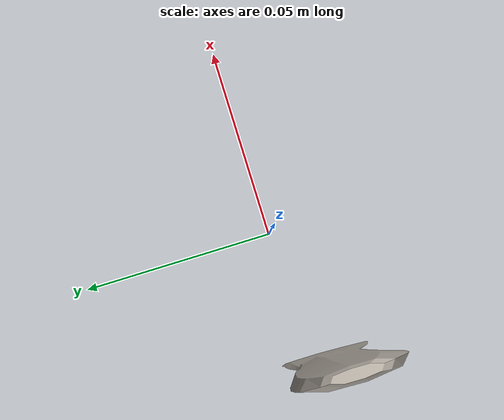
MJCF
<mujoco model="ButterKnife_1">
  <compiler autolimits="true" boundmass="0.01" angle="radian"/>
  <default>
    <default class="/">
      <default class="__VISUAL_MJT__">
        <geom contype="0" conaffinity="0" group="0"/>
      </default>
      <default class="__STRUCTURAL_MJT__">
        <geom contype="8" conaffinity="15" group="4" friction="0.90000000000000002 0.90000000000000002 0.001" solref="0.025000000000000001 1" solimp="0.998 0.998 0.001"/>
      </default>
      <default class="__DYNAMIC_MJT__">
        <geom contype="1" conaffinity="15" group="4" friction="0.90000000000000002 0.90000000000000002 0.001" solref="0.025000000000000001 1" solimp="0.998 0.998 0.001"/>
      </default>
    </default>
  </default>
  <asset>
    <texture name="BrushedAluminum_AlbedoTransparency" type="2d" file="BrushedAluminum_AlbedoTransparency.png"/>
    <material name="material_BrushedAluminum_AlbedoTransparency" class="/" texture="BrushedAluminum_AlbedoTransparency" specular="0.5" shininess="0.5" rgba="1 1 1 1"/>
    <mesh name="ButterKnife_1_Knife.001" class="/" file="ButterKnife_1_Knife.001/ButterKnife_1_Knife.001.obj" scale="2470.819580078125 2470.82080078125 2470.819580078125"/>
  </asset>
  <worldbody>
    <body name="ButterKnife_1">
      <joint name="ButterKnife_1_free" class="/" type="free" pos="0 0 0" axis="0 0 1" stiffness="0" range="0 0" armature="0" damping="0.10000000000000001" frictionloss="0"/>
      <body name="ButterKnife_1_Knife.001" pos="-0.035 -0.0 0.045" quat="0.70710784196853638 -1.0430812835693359e-06 -0.70710575580596924 9.8720192909240723e-07">
        <geom name="ButterKnife_1_Knife.001" class="__VISUAL_MJT__" type="mesh" material="material_BrushedAluminum_AlbedoTransparency" shellinertia="true" mesh="ButterKnife_1_Knife.001"/>
        <geom name="ButterKnife_1_PrimitiveCollider_0" class="__DYNAMIC_MJT__" type="box" size="0.010606370866298676 0.13421308994293213 0.0033317848574370146" rgba="0 1 0 1" pos="-0.0435 0 -0.035" euler="0 0 1.578"/>
      </body>
    </body>
  </worldbody>
</mujoco>
